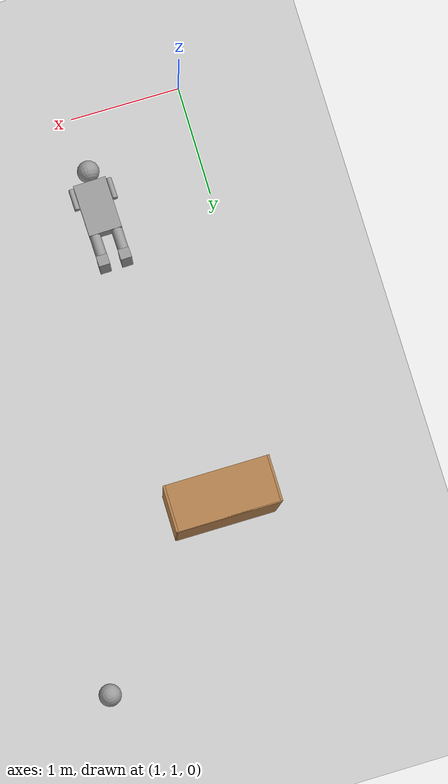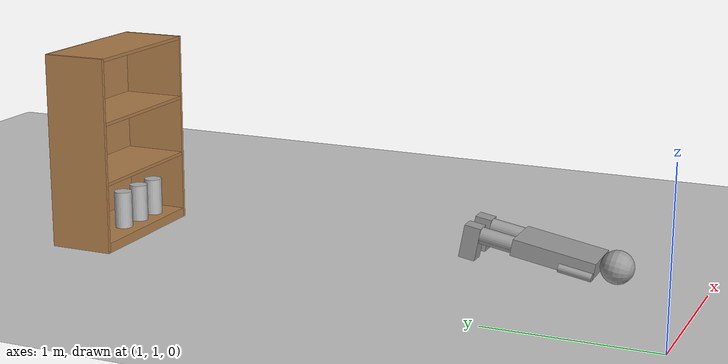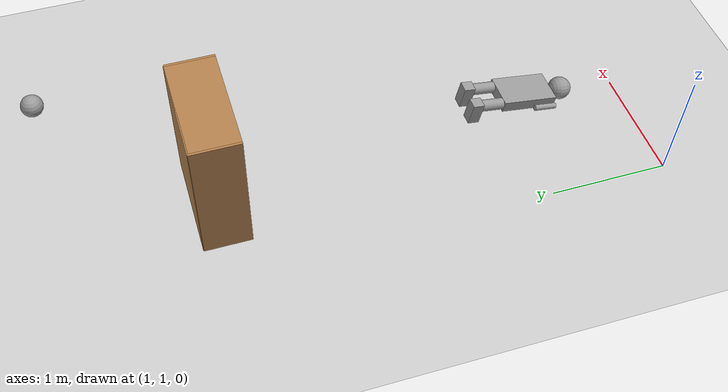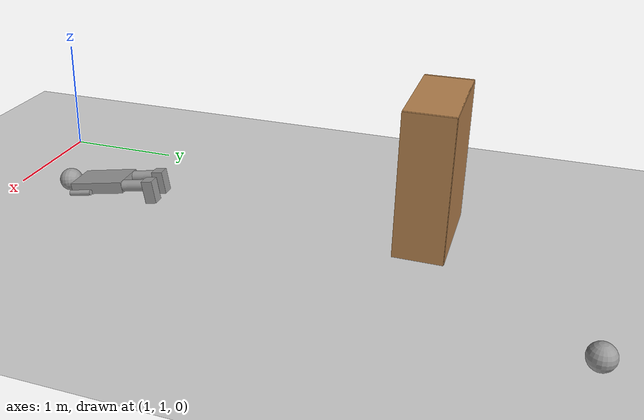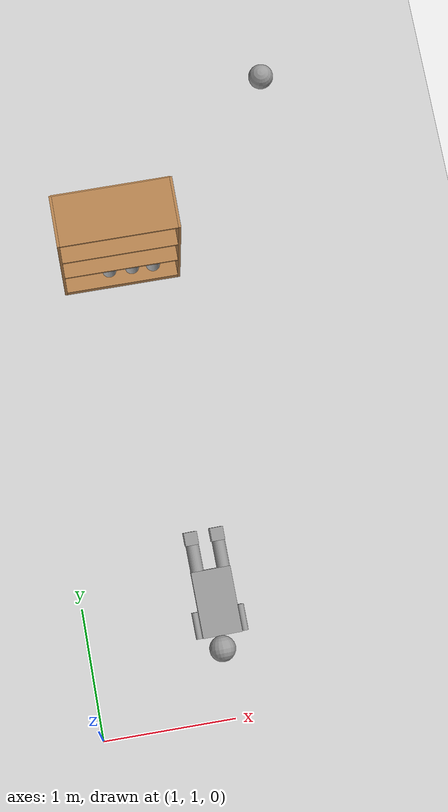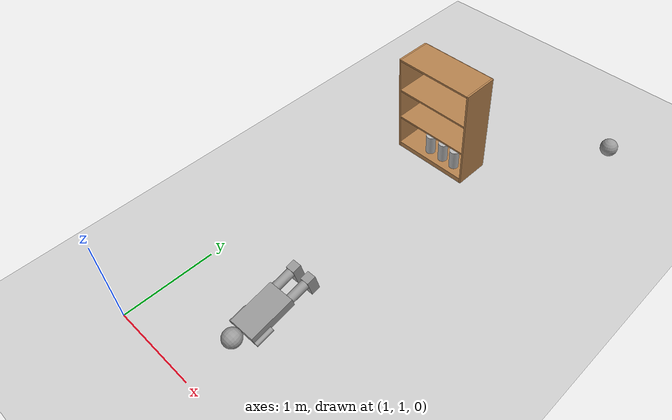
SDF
<sdf version="1.6">
 <world name="default">
  <model name="ground_plane">
   <static>1</static>
   <link name="link">
    <collision name="collision">
     <geometry><plane><normal>0 0 1</normal><size>100 100</size></plane></geometry>
     <surface>
      <contact><collide_bitmask>65535</collide_bitmask></contact>
      <friction><ode><mu>100</mu><mu2>50</mu2></ode></friction>
     </surface>
    </collision>
    <visual name="visual">
     <cast_shadows>0</cast_shadows>
     <geometry><plane><normal>0 0 1</normal><size>100 100</size></plane></geometry>
     <material>
      <script><uri>file://media/materials/scripts/gazebo.material</uri><name>Gazebo/Grey</name></script>
     </material>
    </visual>
   </link>
  </model>
  <model name="UmanBot">
   <link name="link_0">
    <pose>0.0025 0.015625 0.13125 0 -0 0</pose>
    <inertial>
     <mass>1</mass>
     <inertia>
      <ixx>0.166667</ixx>
      <ixy>0</ixy>
      <ixz>0</ixz>
      <iyy>0.166667</iyy>
      <iyz>0</iyz>
      <izz>0.166667</izz>
     </inertia>
    </inertial>
    <visual name="visual">
     <geometry><box><size>0.3 0.1 0.5</size></box></geometry>
     <material>
      <lighting>1</lighting>
      <script><uri>file://media/materials/scripts/gazebo.material</uri><name>Gazebo/Grey</name></script>
      <shader type="pixel"><normal_map>__default__</normal_map></shader>
      <ambient>0.3 0.3 0.3 1</ambient>
      <diffuse>0.7 0.7 0.7 1</diffuse>
      <specular>0.01 0.01 0.01 1</specular>
      <emissive>0 0 0 1</emissive>
     </material>
    </visual>
    <collision name="collision">
     <geometry><box><size>0.3 0.1 0.5</size></box></geometry>
     <surface>
      <friction>
       <ode><mu>1</mu><mu2>1</mu2><fdir1>0 0 0</fdir1><slip1>0</slip1><slip2>0</slip2></ode>
       <torsional>
        <coefficient>1</coefficient>
        <patch_radius>0</patch_radius>
        <surface_radius>0</surface_radius>
        <use_patch_radius>1</use_patch_radius>
        <ode><slip>0</slip></ode>
       </torsional>
      </friction>
      <bounce><restitution_coefficient>0</restitution_coefficient><threshold>1e+06</threshold></bounce>
      <contact>
       <collide_without_contact>0</collide_without_contact>
       <collide_without_contact_bitmask>1</collide_without_contact_bitmask>
       <collide_bitmask>1</collide_bitmask>
       <ode>
        <soft_cfm>0</soft_cfm>
        <soft_erp>0.2</soft_erp>
        <kp>1e+13</kp>
        <kd>1</kd>
        <max_vel>0.01</max_vel>
        <min_depth>0</min_depth>
       </ode>
       <bullet>
        <split_impulse>1</split_impulse>
        <split_impulse_penetration_threshold>-0.01</split_impulse_penetration_threshold>
        <soft_cfm>0</soft_cfm>
        <soft_erp>0.2</soft_erp>
        <kp>1e+13</kp>
        <kd>1</kd>
       </bullet>
      </contact>
     </surface>
    </collision>
   </link>
   <link name="link_3">
    <pose>-0.0175 0.040625 0.48125 0 -0 0</pose>
    <inertial>
     <mass>1</mass>
     <inertia><ixx>0.1</ixx><ixy>0</ixy><ixz>0</ixz><iyy>0.1</iyy><iyz>0</iyz><izz>0.1</izz></inertia>
    </inertial>
    <visual name="visual">
     <geometry><sphere><radius>0.1</radius></sphere></geometry>
     <material>
      <lighting>1</lighting>
      <script><uri>file://media/materials/scripts/gazebo.material</uri><name>Gazebo/Grey</name></script>
      <shader type="pixel"><normal_map>__default__</normal_map></shader>
      <ambient>0.3 0.3 0.3 1</ambient>
      <diffuse>0.7 0.7 0.7 1</diffuse>
      <specular>0.01 0.01 0.01 1</specular>
      <emissive>0 0 0 1</emissive>
     </material>
    </visual>
    <collision name="collision">
     <geometry><sphere><radius>0.1</radius></sphere></geometry>
     <surface>
      <friction>
       <ode><mu>1</mu><mu2>1</mu2><fdir1>0 0 0</fdir1><slip1>0</slip1><slip2>0</slip2></ode>
       <torsional>
        <coefficient>1</coefficient>
        <patch_radius>0</patch_radius>
        <surface_radius>0</surface_radius>
        <use_patch_radius>1</use_patch_radius>
        <ode><slip>0</slip></ode>
       </torsional>
      </friction>
      <bounce><restitution_coefficient>0</restitution_coefficient><threshold>1e+06</threshold></bounce>
      <contact>
       <collide_without_contact>0</collide_without_contact>
       <collide_without_contact_bitmask>1</collide_without_contact_bitmask>
       <collide_bitmask>1</collide_bitmask>
       <ode>
        <soft_cfm>0</soft_cfm>
        <soft_erp>0.2</soft_erp>
        <kp>1e+13</kp>
        <kd>1</kd>
        <max_vel>0.01</max_vel>
        <min_depth>0</min_depth>
       </ode>
       <bullet>
        <split_impulse>1</split_impulse>
        <split_impulse_penetration_threshold>-0.01</split_impulse_penetration_threshold>
        <soft_cfm>0</soft_cfm>
        <soft_erp>0.2</soft_erp>
        <kp>1e+13</kp>
        <kd>1</kd>
       </bullet>
      </contact>
     </surface>
    </collision>
   </link>
   <link name="link_4_clone">
    <pose>0.1025 0.015625 -0.21875 0 -0 0</pose>
    <inertial>
     <mass>1</mass>
     <inertia><ixx>0.145833</ixx><ixy>0</ixy><ixz>0</ixz><iyy>0.145833</iyy><iyz>0</iyz><izz>0.125</izz></inertia>
    </inertial>
    <visual name="visual">
     <geometry><cylinder><radius>0.05</radius><length>0.2</length></cylinder></geometry>
     <material>
      <lighting>1</lighting>
      <script><uri>file://media/materials/scripts/gazebo.material</uri><name>Gazebo/Grey</name></script>
      <shader type="pixel"><normal_map>__default__</normal_map></shader>
      <ambient>0.3 0.3 0.3 1</ambient>
      <diffuse>0.7 0.7 0.7 1</diffuse>
      <specular>0.01 0.01 0.01 1</specular>
      <emissive>0 0 0 1</emissive>
     </material>
    </visual>
    <collision name="collision">
     <geometry><cylinder><radius>0.05</radius><length>0.2</length></cylinder></geometry>
     <surface>
      <friction>
       <ode><mu>1</mu><mu2>1</mu2><fdir1>0 0 0</fdir1><slip1>0</slip1><slip2>0</slip2></ode>
       <torsional>
        <coefficient>1</coefficient>
        <patch_radius>0</patch_radius>
        <surface_radius>0</surface_radius>
        <use_patch_radius>1</use_patch_radius>
        <ode><slip>0</slip></ode>
       </torsional>
      </friction>
      <bounce><restitution_coefficient>0</restitution_coefficient><threshold>1e+06</threshold></bounce>
      <contact>
       <collide_without_contact>0</collide_without_contact>
       <collide_without_contact_bitmask>1</collide_without_contact_bitmask>
       <collide_bitmask>1</collide_bitmask>
       <ode>
        <soft_cfm>0</soft_cfm>
        <soft_erp>0.2</soft_erp>
        <kp>1e+13</kp>
        <kd>1</kd>
        <max_vel>0.01</max_vel>
        <min_depth>0</min_depth>
       </ode>
       <bullet>
        <split_impulse>1</split_impulse>
        <split_impulse_penetration_threshold>-0.01</split_impulse_penetration_threshold>
        <soft_cfm>0</soft_cfm>
        <soft_erp>0.2</soft_erp>
        <kp>1e+13</kp>
        <kd>1</kd>
       </bullet>
      </contact>
     </surface>
    </collision>
   </link>
   <link name="link_4_clone_clone">
    <pose>-0.0975 0.015625 -0.21875 0 -0 0</pose>
    <inertial>
     <mass>1</mass>
     <inertia><ixx>0.145833</ixx><ixy>0</ixy><ixz>0</ixz><iyy>0.145833</iyy><iyz>0</iyz><izz>0.125</izz></inertia>
    </inertial>
    <visual name="visual">
     <geometry><cylinder><radius>0.05</radius><length>0.2</length></cylinder></geometry>
     <material>
      <lighting>1</lighting>
      <script><uri>file://media/materials/scripts/gazebo.material</uri><name>Gazebo/Grey</name></script>
      <shader type="pixel"><normal_map>__default__</normal_map></shader>
      <ambient>0.3 0.3 0.3 1</ambient>
      <diffuse>0.7 0.7 0.7 1</diffuse>
      <specular>0.01 0.01 0.01 1</specular>
      <emissive>0 0 0 1</emissive>
     </material>
    </visual>
    <collision name="collision">
     <geometry><cylinder><radius>0.05</radius><length>0.2</length></cylinder></geometry>
     <surface>
      <friction>
       <ode><mu>1</mu><mu2>1</mu2><fdir1>0 0 0</fdir1><slip1>0</slip1><slip2>0</slip2></ode>
       <torsional>
        <coefficient>1</coefficient>
        <patch_radius>0</patch_radius>
        <surface_radius>0</surface_radius>
        <use_patch_radius>1</use_patch_radius>
        <ode><slip>0</slip></ode>
       </torsional>
      </friction>
      <bounce><restitution_coefficient>0</restitution_coefficient><threshold>1e+06</threshold></bounce>
      <contact>
       <collide_without_contact>0</collide_without_contact>
       <collide_without_contact_bitmask>1</collide_without_contact_bitmask>
       <collide_bitmask>1</collide_bitmask>
       <ode>
        <soft_cfm>0</soft_cfm>
        <soft_erp>0.2</soft_erp>
        <kp>1e+13</kp>
        <kd>1</kd>
        <max_vel>0.01</max_vel>
        <min_depth>0</min_depth>
       </ode>
       <bullet>
        <split_impulse>1</split_impulse>
        <split_impulse_penetration_threshold>-0.01</split_impulse_penetration_threshold>
        <soft_cfm>0</soft_cfm>
        <soft_erp>0.2</soft_erp>
        <kp>1e+13</kp>
        <kd>1</kd>
       </bullet>
      </contact>
     </surface>
    </collision>
   </link>
   <link name="link_6_clone">
    <pose>0.1025 -0.034375 -0.36875 0 -0 0</pose>
    <inertial>
     <mass>1</mass>
     <inertia>
      <ixx>0.166667</ixx>
      <ixy>0</ixy>
      <ixz>0</ixz>
      <iyy>0.166667</iyy>
      <iyz>0</iyz>
      <izz>0.166667</izz>
     </inertia>
    </inertial>
    <visual name="visual">
     <geometry><box><size>0.1 0.2 0.1</size></box></geometry>
     <material>
      <lighting>1</lighting>
      <script><uri>file://media/materials/scripts/gazebo.material</uri><name>Gazebo/Grey</name></script>
      <shader type="pixel"><normal_map>__default__</normal_map></shader>
      <ambient>0.3 0.3 0.3 1</ambient>
      <diffuse>0.7 0.7 0.7 1</diffuse>
      <specular>0.01 0.01 0.01 1</specular>
      <emissive>0 0 0 1</emissive>
     </material>
    </visual>
    <collision name="collision">
     <geometry><box><size>0.1 0.2 0.1</size></box></geometry>
     <surface>
      <friction>
       <ode><mu>1</mu><mu2>1</mu2><fdir1>0 0 0</fdir1><slip1>0</slip1><slip2>0</slip2></ode>
       <torsional>
        <coefficient>1</coefficient>
        <patch_radius>0</patch_radius>
        <surface_radius>0</surface_radius>
        <use_patch_radius>1</use_patch_radius>
        <ode><slip>0</slip></ode>
       </torsional>
      </friction>
      <bounce><restitution_coefficient>0</restitution_coefficient><threshold>1e+06</threshold></bounce>
      <contact>
       <collide_without_contact>0</collide_without_contact>
       <collide_without_contact_bitmask>1</collide_without_contact_bitmask>
       <collide_bitmask>1</collide_bitmask>
       <ode>
        <soft_cfm>0</soft_cfm>
        <soft_erp>0.2</soft_erp>
        <kp>1e+13</kp>
        <kd>1</kd>
        <max_vel>0.01</max_vel>
        <min_depth>0</min_depth>
       </ode>
       <bullet>
        <split_impulse>1</split_impulse>
        <split_impulse_penetration_threshold>-0.01</split_impulse_penetration_threshold>
        <soft_cfm>0</soft_cfm>
        <soft_erp>0.2</soft_erp>
        <kp>1e+13</kp>
        <kd>1</kd>
       </bullet>
      </contact>
     </surface>
    </collision>
   </link>
   <link name="link_6_clone_clone">
    <pose>-0.0975 -0.034375 -0.36875 0 -0 0</pose>
    <inertial>
     <mass>1</mass>
     <inertia>
      <ixx>0.166667</ixx>
      <ixy>0</ixy>
      <ixz>0</ixz>
      <iyy>0.166667</iyy>
      <iyz>0</iyz>
      <izz>0.166667</izz>
     </inertia>
    </inertial>
    <visual name="visual">
     <geometry><box><size>0.1 0.2 0.1</size></box></geometry>
     <material>
      <lighting>1</lighting>
      <script><uri>file://media/materials/scripts/gazebo.material</uri><name>Gazebo/Grey</name></script>
      <shader type="pixel"><normal_map>__default__</normal_map></shader>
      <ambient>0.3 0.3 0.3 1</ambient>
      <diffuse>0.7 0.7 0.7 1</diffuse>
      <specular>0.01 0.01 0.01 1</specular>
      <emissive>0 0 0 1</emissive>
     </material>
    </visual>
    <collision name="collision">
     <geometry><box><size>0.1 0.2 0.1</size></box></geometry>
     <surface>
      <friction>
       <ode><mu>1</mu><mu2>1</mu2><fdir1>0 0 0</fdir1><slip1>0</slip1><slip2>0</slip2></ode>
       <torsional>
        <coefficient>1</coefficient>
        <patch_radius>0</patch_radius>
        <surface_radius>0</surface_radius>
        <use_patch_radius>1</use_patch_radius>
        <ode><slip>0</slip></ode>
       </torsional>
      </friction>
      <bounce><restitution_coefficient>0</restitution_coefficient><threshold>1e+06</threshold></bounce>
      <contact>
       <collide_without_contact>0</collide_without_contact>
       <collide_without_contact_bitmask>1</collide_without_contact_bitmask>
       <collide_bitmask>1</collide_bitmask>
       <ode>
        <soft_cfm>0</soft_cfm>
        <soft_erp>0.2</soft_erp>
        <kp>1e+13</kp>
        <kd>1</kd>
        <max_vel>0.01</max_vel>
        <min_depth>0</min_depth>
       </ode>
       <bullet>
        <split_impulse>1</split_impulse>
        <split_impulse_penetration_threshold>-0.01</split_impulse_penetration_threshold>
        <soft_cfm>0</soft_cfm>
        <soft_erp>0.2</soft_erp>
        <kp>1e+13</kp>
        <kd>1</kd>
       </bullet>
      </contact>
     </surface>
    </collision>
   </link>
   <link name="link_7_clone">
    <pose>-0.1725 -0.009375 0.28125 0 -0 0</pose>
    <inertial>
     <mass>1</mass>
     <inertia><ixx>0.145833</ixx><ixy>0</ixy><ixz>0</ixz><iyy>0.145833</iyy><iyz>0</iyz><izz>0.125</izz></inertia>
    </inertial>
    <visual name="visual">
     <geometry><cylinder><radius>0.025</radius><length>0.2</length></cylinder></geometry>
     <material>
      <lighting>1</lighting>
      <script><uri>file://media/materials/scripts/gazebo.material</uri><name>Gazebo/Grey</name></script>
      <shader type="pixel"><normal_map>__default__</normal_map></shader>
      <ambient>0.3 0.3 0.3 1</ambient>
      <diffuse>0.7 0.7 0.7 1</diffuse>
      <specular>0.01 0.01 0.01 1</specular>
      <emissive>0 0 0 1</emissive>
     </material>
    </visual>
    <collision name="collision">
     <geometry><cylinder><radius>0.025</radius><length>0.2</length></cylinder></geometry>
     <surface>
      <friction>
       <ode><mu>1</mu><mu2>1</mu2><fdir1>0 0 0</fdir1><slip1>0</slip1><slip2>0</slip2></ode>
       <torsional>
        <coefficient>1</coefficient>
        <patch_radius>0</patch_radius>
        <surface_radius>0</surface_radius>
        <use_patch_radius>1</use_patch_radius>
        <ode><slip>0</slip></ode>
       </torsional>
      </friction>
      <bounce><restitution_coefficient>0</restitution_coefficient><threshold>1e+06</threshold></bounce>
      <contact>
       <collide_without_contact>0</collide_without_contact>
       <collide_without_contact_bitmask>1</collide_without_contact_bitmask>
       <collide_bitmask>1</collide_bitmask>
       <ode>
        <soft_cfm>0</soft_cfm>
        <soft_erp>0.2</soft_erp>
        <kp>1e+13</kp>
        <kd>1</kd>
        <max_vel>0.01</max_vel>
        <min_depth>0</min_depth>
       </ode>
       <bullet>
        <split_impulse>1</split_impulse>
        <split_impulse_penetration_threshold>-0.01</split_impulse_penetration_threshold>
        <soft_cfm>0</soft_cfm>
        <soft_erp>0.2</soft_erp>
        <kp>1e+13</kp>
        <kd>1</kd>
       </bullet>
      </contact>
     </surface>
    </collision>
   </link>
   <link name="link_7_clone_clone">
    <pose>0.1775 -0.009375 0.28125 0 -0 0</pose>
    <inertial>
     <mass>1</mass>
     <inertia><ixx>0.145833</ixx><ixy>0</ixy><ixz>0</ixz><iyy>0.145833</iyy><iyz>0</iyz><izz>0.125</izz></inertia>
    </inertial>
    <visual name="visual">
     <geometry><cylinder><radius>0.025</radius><length>0.2</length></cylinder></geometry>
     <material>
      <lighting>1</lighting>
      <script><uri>file://media/materials/scripts/gazebo.material</uri><name>Gazebo/Grey</name></script>
      <shader type="pixel"><normal_map>__default__</normal_map></shader>
      <ambient>0.3 0.3 0.3 1</ambient>
      <diffuse>0.7 0.7 0.7 1</diffuse>
      <specular>0.01 0.01 0.01 1</specular>
      <emissive>0 0 0 1</emissive>
     </material>
    </visual>
    <collision name="collision">
     <geometry><cylinder><radius>0.025</radius><length>0.2</length></cylinder></geometry>
     <surface>
      <friction>
       <ode><mu>1</mu><mu2>1</mu2><fdir1>0 0 0</fdir1><slip1>0</slip1><slip2>0</slip2></ode>
       <torsional>
        <coefficient>1</coefficient>
        <patch_radius>0</patch_radius>
        <surface_radius>0</surface_radius>
        <use_patch_radius>1</use_patch_radius>
        <ode><slip>0</slip></ode>
       </torsional>
      </friction>
      <bounce><restitution_coefficient>0</restitution_coefficient><threshold>1e+06</threshold></bounce>
      <contact>
       <collide_without_contact>0</collide_without_contact>
       <collide_without_contact_bitmask>1</collide_without_contact_bitmask>
       <collide_bitmask>1</collide_bitmask>
       <ode>
        <soft_cfm>0</soft_cfm>
        <soft_erp>0.2</soft_erp>
        <kp>1e+13</kp>
        <kd>1</kd>
        <max_vel>0.01</max_vel>
        <min_depth>0</min_depth>
       </ode>
       <bullet>
        <split_impulse>1</split_impulse>
        <split_impulse_penetration_threshold>-0.01</split_impulse_penetration_threshold>
        <soft_cfm>0</soft_cfm>
        <soft_erp>0.2</soft_erp>
        <kp>1e+13</kp>
        <kd>1</kd>
       </bullet>
      </contact>
     </surface>
    </collision>
   </link>
   <joint name="link_0_JOINT_0" type="fixed">
    <parent>link_0</parent>
    <child>link_3</child>
    <physics>
     <ode><limit><cfm>0</cfm><erp>0.2</erp></limit><suspension><cfm>0</cfm><erp>0.2</erp></suspension></ode>
    </physics>
   </joint>
   <joint name="link_0_JOINT_10" type="revolute">
    <parent>link_0</parent>
    <child>link_7_clone_clone</child>
    <axis>
     <xyz>1 0 0</xyz>
     <use_parent_model_frame>0</use_parent_model_frame>
     <limit>
      <lower>-1.79769e+308</lower>
      <upper>1.79769e+308</upper>
      <effort>-1</effort>
      <velocity>-1</velocity>
     </limit>
     <dynamics>
      <spring_reference>0</spring_reference>
      <spring_stiffness>0</spring_stiffness>
      <damping>0</damping>
     </dynamics>
    </axis>
    <physics>
     <ode><limit><cfm>0</cfm><erp>0.2</erp></limit><suspension><cfm>0</cfm><erp>0.2</erp></suspension></ode>
    </physics>
   </joint>
   <joint name="link_0_JOINT_2" type="ball">
    <parent>link_0</parent>
    <child>link_4_clone</child>
    <physics>
     <ode><limit><cfm>0</cfm><erp>0.2</erp></limit><suspension><cfm>0</cfm><erp>0.2</erp></suspension></ode>
    </physics>
   </joint>
   <joint name="link_0_JOINT_6" type="ball">
    <parent>link_0</parent>
    <child>link_4_clone_clone</child>
    <physics>
     <ode><limit><cfm>0</cfm><erp>0.2</erp></limit><suspension><cfm>0</cfm><erp>0.2</erp></suspension></ode>
    </physics>
   </joint>
   <joint name="link_0_JOINT_9" type="revolute">
    <parent>link_0</parent>
    <child>link_7_clone</child>
    <axis>
     <xyz>1 0 0</xyz>
     <use_parent_model_frame>0</use_parent_model_frame>
     <limit>
      <lower>-1.79769e+308</lower>
      <upper>1.79769e+308</upper>
      <effort>-1</effort>
      <velocity>-1</velocity>
     </limit>
     <dynamics>
      <spring_reference>0</spring_reference>
      <spring_stiffness>0</spring_stiffness>
      <damping>0</damping>
     </dynamics>
    </axis>
    <physics>
     <ode><limit><cfm>0</cfm><erp>0.2</erp></limit><suspension><cfm>0</cfm><erp>0.2</erp></suspension></ode>
    </physics>
   </joint>
   <joint name="link_4_clone_JOINT_3" type="fixed">
    <parent>link_4_clone</parent>
    <child>link_6_clone</child>
    <physics>
     <ode><limit><cfm>0</cfm><erp>0.2</erp></limit><suspension><cfm>0</cfm><erp>0.2</erp></suspension></ode>
    </physics>
   </joint>
   <joint name="link_4_clone_clone_JOINT_8" type="fixed">
    <parent>link_4_clone_clone</parent>
    <child>link_6_clone_clone</child>
    <physics>
     <ode><limit><cfm>0</cfm><erp>0.2</erp></limit><suspension><cfm>0</cfm><erp>0.2</erp></suspension></ode>
    </physics>
   </joint>
   <static>0</static>
   <pose>2 2 0.145686 1.74976 6e-06 0.018794</pose>
  </model>
  <model name="bookshelf">
   <static>1</static>
   <link name="link">
    <inertial><mass>1</mass></inertial>
    <collision name="back">
     <pose>0 0.005 0.6 0 -0 0</pose>
     <geometry><box><size>0.9 0.01 1.2</size></box></geometry>
    </collision>
    <visual name="visual1">
     <pose>0 0.005 0.6 0 -0 0</pose>
     <geometry><box><size>0.9 0.01 1.2</size></box></geometry>
     <material>
      <script><uri>file://media/materials/scripts/gazebo.material</uri><name>Gazebo/Wood</name></script>
     </material>
    </visual>
    <collision name="left_side">
     <pose>0.45 -0.195 0.6 0 -0 0</pose>
     <geometry><box><size>0.02 0.4 1.2</size></box></geometry>
    </collision>
    <visual name="visual2">
     <pose>0.45 -0.195 0.6 0 -0 0</pose>
     <geometry><box><size>0.02 0.4 1.2</size></box></geometry>
     <material>
      <script><uri>file://media/materials/scripts/gazebo.material</uri><name>Gazebo/Wood</name></script>
     </material>
    </visual>
    <collision name="right_side">
     <pose>-0.45 -0.195 0.6 0 -0 0</pose>
     <geometry><box><size>0.02 0.4 1.2</size></box></geometry>
    </collision>
    <visual name="visual3">
     <pose>-0.45 -0.195 0.6 0 -0 0</pose>
     <geometry><box><size>0.02 0.4 1.2</size></box></geometry>
     <material>
      <script><uri>file://media/materials/scripts/gazebo.material</uri><name>Gazebo/Wood</name></script>
     </material>
    </visual>
    <collision name="bottom">
     <pose>0 -0.195 0.03 0 -0 0</pose>
     <geometry><box><size>0.88 0.4 0.06</size></box></geometry>
    </collision>
    <visual name="visual4">
     <pose>0 -0.195 0.03 0 -0 0</pose>
     <geometry><box><size>0.88 0.4 0.06</size></box></geometry>
     <material>
      <script><uri>file://media/materials/scripts/gazebo.material</uri><name>Gazebo/Wood</name></script>
     </material>
    </visual>
    <collision name="top">
     <pose>0 -0.195 1.19 0 -0 0</pose>
     <geometry><box><size>0.88 0.4 0.02</size></box></geometry>
    </collision>
    <visual name="visual5">
     <pose>0 -0.195 1.19 0 -0 0</pose>
     <geometry><box><size>0.88 0.4 0.02</size></box></geometry>
     <material>
      <script><uri>file://media/materials/scripts/gazebo.material</uri><name>Gazebo/Wood</name></script>
     </material>
    </visual>
    <collision name="low_shelf">
     <pose>0 -0.195 0.43 0 -0 0</pose>
     <geometry><box><size>0.88 0.4 0.02</size></box></geometry>
    </collision>
    <visual name="visual6">
     <pose>0 -0.195 0.43 0 -0 0</pose>
     <geometry><box><size>0.88 0.4 0.02</size></box></geometry>
     <material>
      <script><uri>file://media/materials/scripts/gazebo.material</uri><name>Gazebo/Wood</name></script>
     </material>
    </visual>
    <collision name="high_shelf">
     <pose>0 -0.195 0.8 0 -0 0</pose>
     <geometry><box><size>0.88 0.4 0.02</size></box></geometry>
    </collision>
    <visual name="visual7">
     <pose>0 -0.195 0.8 0 -0 0</pose>
     <geometry><box><size>0.88 0.4 0.02</size></box></geometry>
     <material>
      <script><uri>file://media/materials/scripts/gazebo.material</uri><name>Gazebo/Wood</name></script>
     </material>
    </visual>
   </link>
   <pose>1.7256 4.87241 0 0 -0 0</pose>
  </model>
  <model name="beer">
   <link name="link">
    <pose>0 0 0.115 0 -0 0</pose>
    <inertial>
     <mass>0.39</mass>
     <inertia><ixx>0.00058</ixx><ixy>0</ixy><ixz>0</ixz><iyy>0.00058</iyy><iyz>0</iyz><izz>0.00019</izz></inertia>
    </inertial>
    <collision name="collision">
     <geometry><cylinder><radius>0.055</radius><length>0.23</length></cylinder></geometry>
    </collision>
    <visual name="visual">
     <geometry><cylinder><radius>0.055</radius><length>0.23</length></cylinder></geometry>
     <material>
      <script>
       <uri>model://beer/materials/scripts</uri>
       <uri>model://beer/materials/textures</uri>
       <name>Beer/Diffuse</name>
      </script>
     </material>
    </visual>
   </link>
   <pose>1.9866 4.59399 0.060002 2.8e-05 6e-06 0.000104</pose>
  </model>
  <model name="beer_0">
   <link name="link">
    <pose>0 0 0.115 0 -0 0</pose>
    <inertial>
     <mass>0.39</mass>
     <inertia><ixx>0.00058</ixx><ixy>0</ixy><ixz>0</ixz><iyy>0.00058</iyy><iyz>0</iyz><izz>0.00019</izz></inertia>
    </inertial>
    <collision name="collision">
     <geometry><cylinder><radius>0.055</radius><length>0.23</length></cylinder></geometry>
    </collision>
    <visual name="visual">
     <geometry><cylinder><radius>0.055</radius><length>0.23</length></cylinder></geometry>
     <material>
      <script>
       <uri>model://beer/materials/scripts</uri>
       <uri>model://beer/materials/textures</uri>
       <name>Beer/Diffuse</name>
      </script>
     </material>
    </visual>
   </link>
   <pose>1.8198 4.5999 0.059992 -1e-06 2.7e-05 0.000184</pose>
  </model>
  <model name="beer_1">
   <link name="link">
    <pose>0 0 0.115 0 -0 0</pose>
    <inertial>
     <mass>0.39</mass>
     <inertia><ixx>0.00058</ixx><ixy>0</ixy><ixz>0</ixz><iyy>0.00058</iyy><iyz>0</iyz><izz>0.00019</izz></inertia>
    </inertial>
    <collision name="collision">
     <geometry><cylinder><radius>0.055</radius><length>0.23</length></cylinder></geometry>
    </collision>
    <visual name="visual">
     <geometry><cylinder><radius>0.055</radius><length>0.23</length></cylinder></geometry>
     <material>
      <script>
       <uri>model://beer/materials/scripts</uri>
       <uri>model://beer/materials/textures</uri>
       <name>Beer/Diffuse</name>
      </script>
     </material>
    </visual>
   </link>
   <pose>1.63958 4.60177 0.060002 2.8e-05 1e-05 0.000174</pose>
  </model>
  <model name="my_ball">
   <link name="link_0">
    <inertial>
     <mass>1</mass>
     <inertia><ixx>0.1</ixx><ixy>0</ixy><ixz>0</ixz><iyy>0.1</iyy><iyz>0</iyz><izz>0.1</izz></inertia>
    </inertial>
    <visual name="visual">
     <geometry><sphere><radius>0.1</radius></sphere></geometry>
     <material>
      <lighting>1</lighting>
      <script><uri>file://media/materials/scripts/gazebo.material</uri><name>Gazebo/Grey</name></script>
      <shader type="pixel"><normal_map>__default__</normal_map></shader>
      <ambient>1 1 1 1</ambient>
      <diffuse>1 1 1 1</diffuse>
      <specular>1 1 1 1</specular>
      <emissive>1 1 1 1</emissive>
     </material>
    </visual>
    <collision name="collision">
     <geometry><sphere><radius>0.1</radius></sphere></geometry>
     <surface>
      <friction>
       <ode><mu>1</mu><mu2>1</mu2><fdir1>0 0 0</fdir1><slip1>0</slip1><slip2>0</slip2></ode>
       <torsional>
        <coefficient>1</coefficient>
        <patch_radius>0</patch_radius>
        <surface_radius>0</surface_radius>
        <use_patch_radius>1</use_patch_radius>
        <ode><slip>0</slip></ode>
       </torsional>
      </friction>
      <bounce><restitution_coefficient>0</restitution_coefficient><threshold>1e+06</threshold></bounce>
      <contact>
       <collide_without_contact>0</collide_without_contact>
       <collide_without_contact_bitmask>1</collide_without_contact_bitmask>
       <collide_bitmask>1</collide_bitmask>
       <ode>
        <soft_cfm>0</soft_cfm>
        <soft_erp>0.2</soft_erp>
        <kp>1e+13</kp>
        <kd>1</kd>
        <max_vel>0.01</max_vel>
        <min_depth>0</min_depth>
       </ode>
       <bullet>
        <split_impulse>1</split_impulse>
        <split_impulse_penetration_threshold>-0.01</split_impulse_penetration_threshold>
        <soft_cfm>0</soft_cfm>
        <soft_erp>0.2</soft_erp>
        <kp>1e+13</kp>
        <kd>1</kd>
       </bullet>
      </contact>
     </surface>
    </collision>
   </link>
   <static>0</static>
   <pose>3.11 6 0.1 0 -0 0</pose>
  </model>
 </world>
</sdf>
